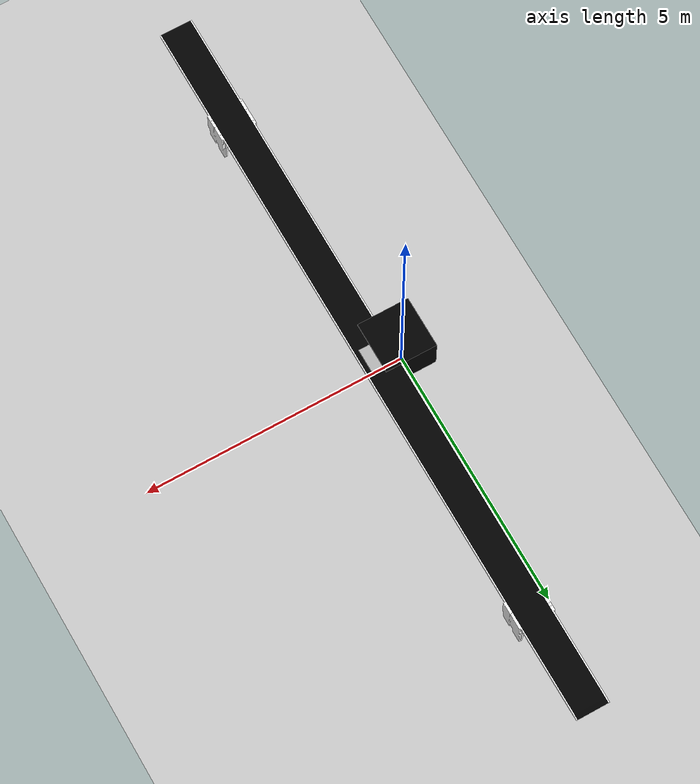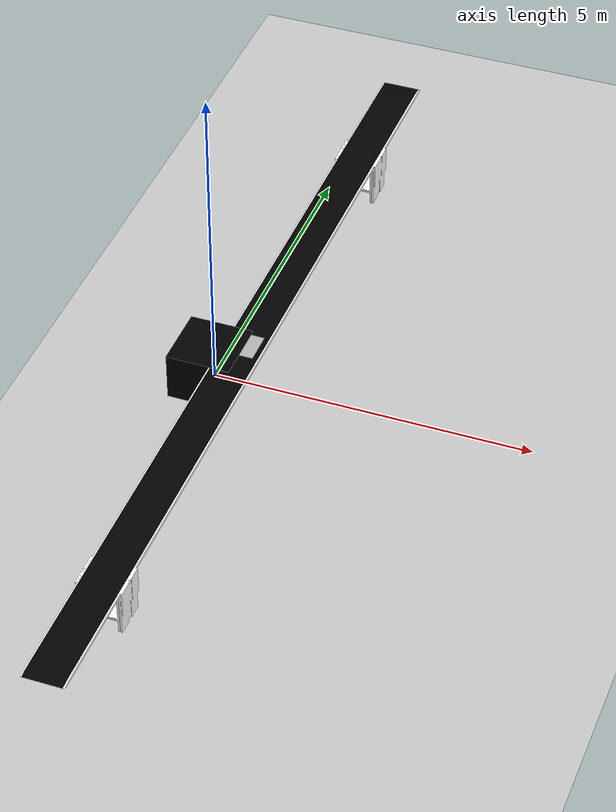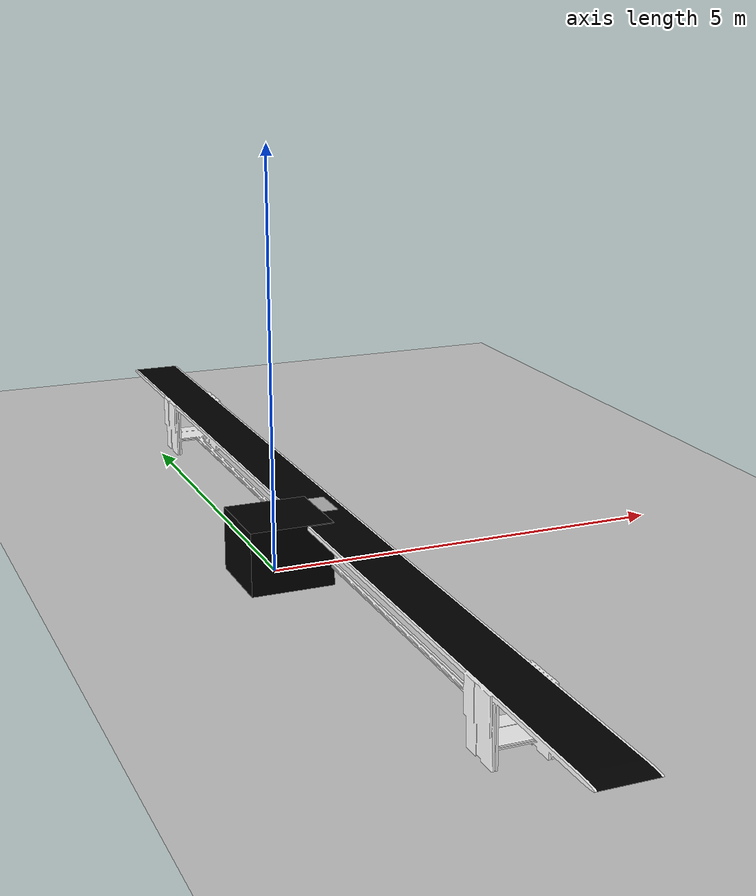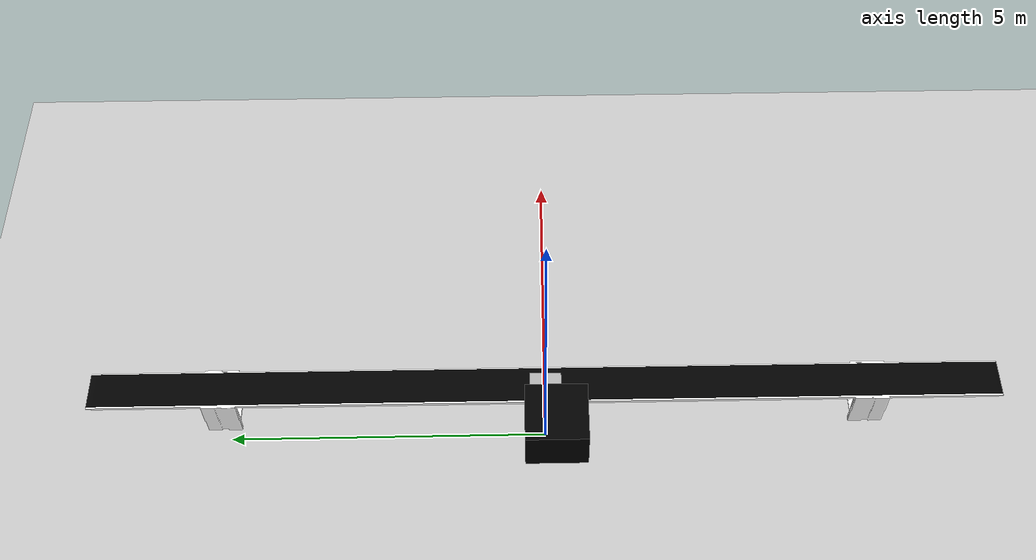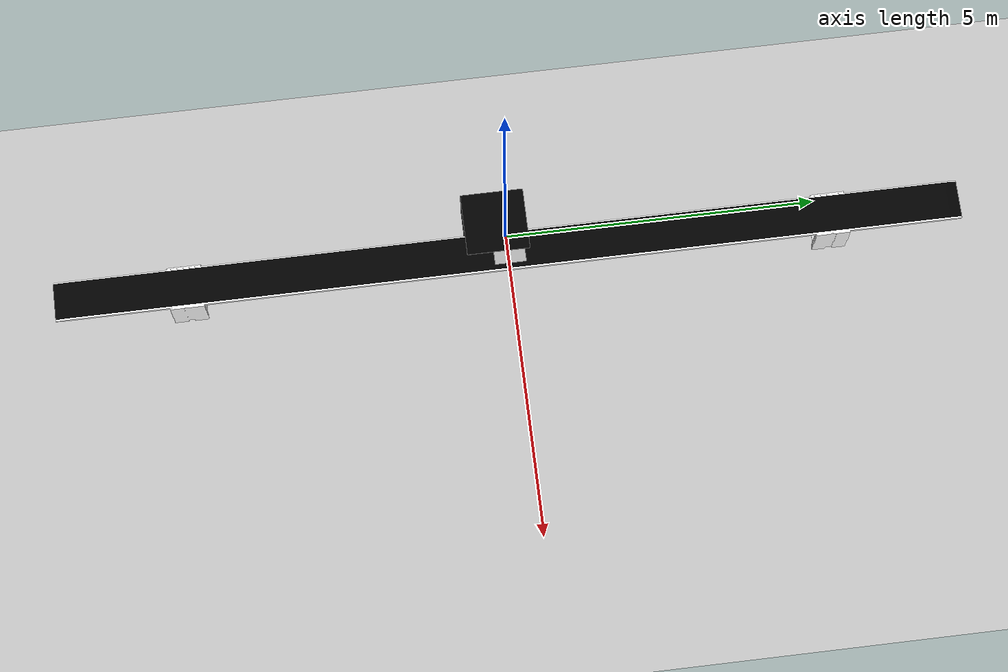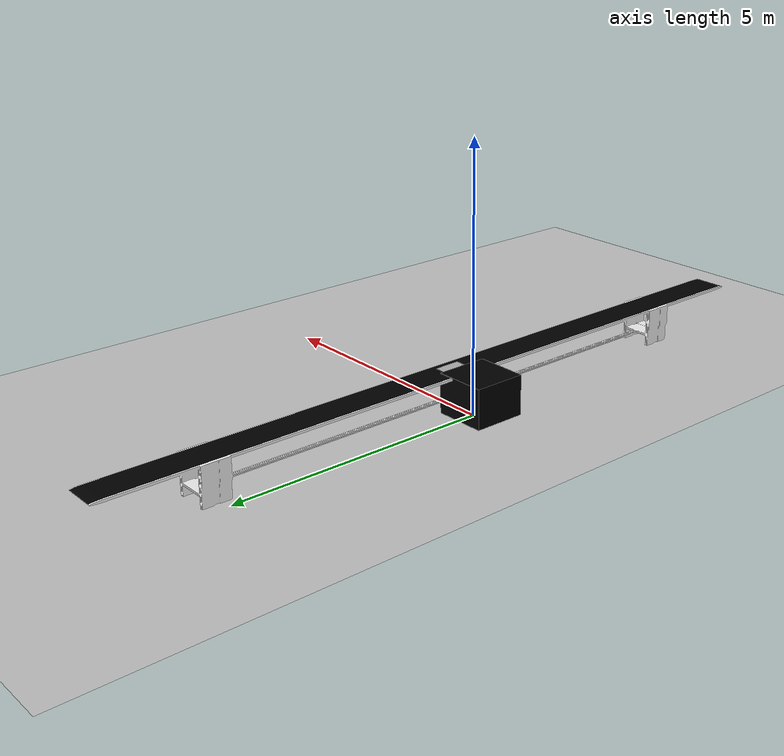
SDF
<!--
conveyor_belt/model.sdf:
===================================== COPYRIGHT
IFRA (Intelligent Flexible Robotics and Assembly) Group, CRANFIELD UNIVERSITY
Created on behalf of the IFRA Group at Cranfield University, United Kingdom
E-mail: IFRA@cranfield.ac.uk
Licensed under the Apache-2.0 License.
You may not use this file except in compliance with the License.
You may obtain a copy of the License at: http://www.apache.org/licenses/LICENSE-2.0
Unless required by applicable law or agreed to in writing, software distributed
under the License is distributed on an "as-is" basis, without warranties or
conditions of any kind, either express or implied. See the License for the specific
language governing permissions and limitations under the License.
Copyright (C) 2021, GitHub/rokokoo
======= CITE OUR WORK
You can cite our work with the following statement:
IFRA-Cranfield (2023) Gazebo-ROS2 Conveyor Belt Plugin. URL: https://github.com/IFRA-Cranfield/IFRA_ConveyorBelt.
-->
<?xml version="1.0" ?>
<sdf version="1.5">
  <world name="store_world">

    <!-- ✅ Lighting -->
    <include>
      <uri>model://sun</uri>
    </include>

    <!-- ✅ Ground -->
    <include>
      <uri>model://ground_plane</uri>
    </include>

    <!-- ✅ Conveyor Belt -->
    <include>
      <name>conveyor_belt</name>
      <pose>0.5 0 0 0 0 0</pose>
      <uri>model://conveyor_belt</uri>
    </include>

    <!-- ✅ Physics tuned for real-time performance -->
    <physics type="ode">
      <max_step_size>0.002</max_step_size>           <!-- 2 ms step (500 Hz sim) -->
      <real_time_update_rate>500</real_time_update_rate>
      <real_time_factor>1.0</real_time_factor>

      <ode>
        <solver>
          <type>quick</type>
          <iters>20</iters>           <!-- reduces CPU cost -->
          <sor>1.3</sor>
        </solver>
        <constraints>
          <cfm>0.0</cfm>
          <erp>0.2</erp>
        </constraints>
      </ode>
    </physics>

    <!--  Scene optimization -->
    <scene>
      <shadows>false</shadows>
      <ambient>0.4 0.4 0.4 1.0</ambient>
      <background>0.7 0.7 0.7 1.0</background>
    </scene>

    <!-- Plugins (optional) -->
    <!-- e.g. real-time monitor or world control can be added here -->

    <model name='rectangle'>
      <pose>0.0 -0.166851 0.25 0 0 0</pose>
      <link name='rectangle_link'>
        <inertial>
          <mass>10</mass>
          <inertia>
            <ixx>0.72917</ixx>
            <ixy>0</ixy>
            <ixz>0</ixz>
            <iyy>0.72917</iyy>
            <iyz>0</iyz>
            <izz>1.25</izz>
          </inertia>
          <pose>0 0 0 0 0 0</pose>
        </inertial>

        <!-- Collision geometry -->
        <collision name='rectangle_collision'>
          <geometry>
            <box>
              <!-- width (x), depth (y), height (z) -->
              <size>1.0 1.0 1.0</size>
            </box>
          </geometry>
          <surface>
            <friction>
              <ode>
                <mu>1.0</mu>
                <mu2>1.0</mu2>
              </ode>
            </friction>
            <bounce/>
            <contact/>
          </surface>
        </collision>

        <!-- Visual geometry -->
        <visual name='rectangle_visual'>
          <geometry>
            <box>
              <size>1.0 1.0 1.0</size>
            </box>
          </geometry>
          <material>
            <ambient>0.0 0.0 0.0 1</ambient>
            <diffuse>0.0 0.0 0.0 1</diffuse>
            <specular>0.1 0.1 0.1 1</specular>
          </material>
        </visual>

        <pose>0 0 0 0 0 0</pose>
        <enable_wind>false</enable_wind>
      </link>

      <static>true</static>
      <self_collide>false</self_collide>
    </model>

  </world>
</sdf>

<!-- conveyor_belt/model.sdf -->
<sdf version="1.4">
  <model name="conveyor">
      <!-- Fixed belt structure -->
      <link name="belt_visual">
          <pose>0 0 0 0 0 0</pose>
          <visual name="visual">
              <geometry>
                  <mesh>
                      <scale>1.5 12 1</scale>
                      <uri>model://conveyor_belt/meshes/conveyor_belt.dae</uri>
                  </mesh>
              </geometry>
          </visual>
          <collision name="collision">
              <geometry>
                  <mesh>
                      <scale>1.5 12 1</scale>
                      <uri>model://conveyor_belt/meshes/conveyor_belt.dae</uri>
                  </mesh>
              </geometry>
          </collision>
          <inertial>
              <mass>2000.0</mass>
              <inertia>
                  <ixx>4000.0</ixx>
                  <ixy>0.0</ixy>
                  <ixz>0.0</ixz>
                  <iyy>4000.0</iyy>
                  <iyz>0.0</iyz>
                  <izz>4000.0</izz>
              </inertia>
          </inertial>
      </link>

      <!-- Moving belt surface -->
      <link name="belt_moving">
          <pose>0 0 0.741 0 0 0.0</pose>
          <inertial>
              <mass>200.0</mass>
              <inertia>
                  <ixx>400.0</ixx>
                  <ixy>0.0</ixy>
                  <ixz>0.0</ixz>
                  <iyy>400.0</iyy>
                  <iyz>0.0</iyz>
                  <izz>400.0</izz>
              </inertia>
          </inertial>
          <collision name="belt_collision">
              <geometry>
                  <box>
                      <size>0.425 12 0.00001</size>
                  </box>
              </geometry>
              <surface>
                  <friction>
                      <ode>
                          <mu>100.0</mu>
                          <mu2>100.0</mu2>
                      </ode>
                      <torsional>
                          <coefficient>1000.0</coefficient>
                          <patch_radius>0.1</patch_radius>
                      </torsional>
                  </friction>
              </surface>
          </collision>
          <visual name="belt_visual">
              <geometry>
                  <box>
                      <size>0.425 0.5 0.001</size>
                  </box>
              </geometry>
          </visual>
      </link>

      <!-- Joint connecting the links directly -->
      <joint name="belt_joint" type="prismatic">
          <parent>belt_visual</parent>
          <child>belt_moving</child>
          <axis>
              <xyz>0 1 0</xyz>
              <limit>
                  <lower>0.0</lower>
                  <upper>0.01</upper>
              </limit>
          </axis>
      </joint>

      <joint name="belt_joint" type="prismatic">
        <parent>conveyorbelt_fixed::belt_visual</parent>
        <child>conveyorbelt_moving::belt_moving</child>
        <axis>
            <xyz>0 1 0</xyz>
            <limit>
                <lower>0.0</lower>
                <upper>0.01</upper>
            </limit>
        </axis>
    </joint>

    <plugin name="ros2_conveyorbelt_plugin" filename="libros2_conveyorbelt_plugin.so" >
        <ros>
            <namespace></namespace>
        </ros>
        <max_velocity>1.0</max_velocity>
        <publish_rate>1000</publish_rate>
    </plugin>

  </model>
</sdf>
